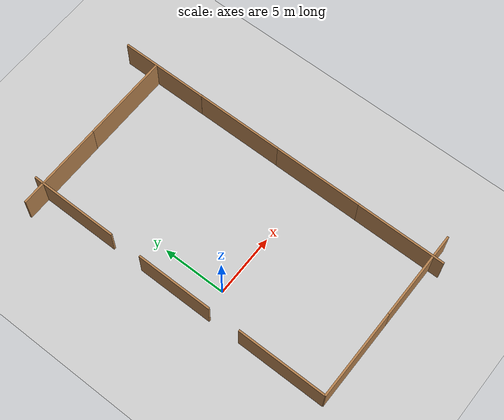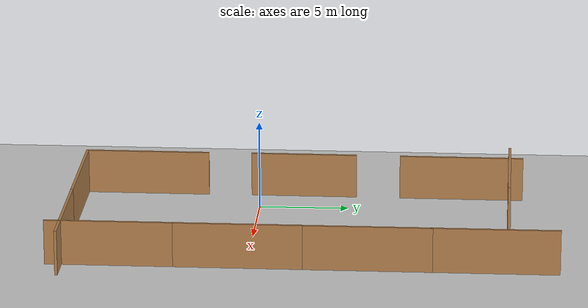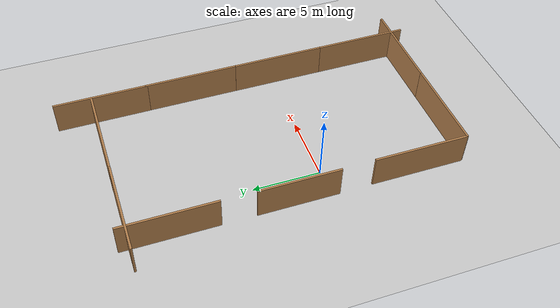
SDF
<sdf version="1.7">
 <world name="default">
  <physics name="default_physics" default="0" type="ode">
   <ode>
    <solver>
     <type>quick</type>
     <iters>10</iters>
     <sor>1.3</sor>
     <use_dynamic_moi_rescaling>0</use_dynamic_moi_rescaling>
    </solver>
    <constraints>
     <cfm>0</cfm>
     <erp>0.2</erp>
     <contact_max_correcting_vel>1000</contact_max_correcting_vel>
     <contact_surface_layer>0.001</contact_surface_layer>
    </constraints>
   </ode>
   <max_step_size>0.004</max_step_size>
   <real_time_factor>1</real_time_factor>
   <real_time_update_rate>250</real_time_update_rate>
  </physics>
  <scene><shadows>0</shadows><ambient>0.4 0.4 0.4 1</ambient><background>0.7 0.7 0.7 1</background></scene>
  <light name="sun" type="directional">
   <pose>0 0 1000 0.4 0.2 0</pose>
   <diffuse>1 1 1 1</diffuse>
   <specular>0.6 0.6 0.6 1</specular>
   <direction>0.1 0.1 -0.9</direction>
   <attenuation>
    <range>20</range>
    <constant>0.5</constant>
    <linear>0.01</linear>
    <quadratic>0.001</quadratic>
   </attenuation>
   <spot><inner_angle>0</inner_angle><outer_angle>0</outer_angle><falloff>0</falloff></spot>
  </light>
  <model name="ground_plane">
   <static>1</static>
   <link name="link">
    <collision name="collision">
     <geometry><plane><normal>0 0 1</normal><size>100 100</size></plane></geometry>
     <surface><friction><ode><mu>100</mu><mu2>50</mu2></ode></friction></surface>
    </collision>
    <visual name="visual">
     <cast_shadows>0</cast_shadows>
     <geometry><plane><normal>0 0 1</normal><size>100 100</size></plane></geometry>
     <material>
      <script><uri>file://media/materials/scripts/gazebo.material</uri><name>Gazebo/Grey</name></script>
     </material>
    </visual>
   </link>
  </model>
  <gravity>0 0 -9.8066</gravity>
  <magnetic_field>6e-06 2.3e-05 -4.2e-05</magnetic_field>
  <atmosphere type="adiabatic"/>
  <spherical_coordinates>
   <surface_model>EARTH_WGS84</surface_model>
   <latitude_deg>0</latitude_deg>
   <longitude_deg>0</longitude_deg>
   <elevation>0</elevation>
   <heading_deg>0</heading_deg>
  </spherical_coordinates>
  <model name="wall_simple_wood_tex">
   <pose>10.5664 -0.448754 0 0 0 -1.57</pose>
   <link name="Wall_7">
    <collision name="Wall_7_Collision">
     <geometry><box><size>7 0.15 2.5</size></box></geometry>
     <pose>0 0 1.25 0 -0 0</pose>
    </collision>
    <visual name="Wall_7_Visual">
     <pose>0 0 1.25 0 -0 0</pose>
     <geometry><box><size>7 0.15 2.5</size></box></geometry>
     <material>
      <script><uri>file://media/materials/scripts/gazebo.material</uri><name>Gazebo/Wood</name></script>
      <ambient>1 1 1 1</ambient>
     </material>
     <meta><layer>0</layer></meta>
    </visual>
    <pose>0 -0.485062 0 0 -0 0</pose>
   </link>
   <static>1</static>
  </model>
  <model name="wall_simple_wood_tex_clone">
   <pose>10.5658 6.55323 0 0 0 -1.57</pose>
   <link name="Wall_7">
    <collision name="Wall_7_Collision">
     <geometry><box><size>7 0.15 2.5</size></box></geometry>
     <pose>0 0 1.25 0 -0 0</pose>
    </collision>
    <visual name="Wall_7_Visual">
     <pose>0 0 1.25 0 -0 0</pose>
     <geometry><box><size>7 0.15 2.5</size></box></geometry>
     <material>
      <script><uri>file://media/materials/scripts/gazebo.material</uri><name>Gazebo/Wood</name></script>
      <ambient>1 1 1 1</ambient>
     </material>
     <meta><layer>0</layer></meta>
    </visual>
    <pose>0 -0.485062 0 0 -0 0</pose>
   </link>
   <static>1</static>
  </model>
  <model name="wall_simple_wood_tex_clone_clone">
   <pose>10.5549 13.3964 0 0 0 -1.57</pose>
   <link name="Wall_7">
    <collision name="Wall_7_Collision">
     <geometry><box><size>7 0.15 2.5</size></box></geometry>
     <pose>0 0 1.25 0 -0 0</pose>
    </collision>
    <visual name="Wall_7_Visual">
     <pose>0 0 1.25 0 -0 0</pose>
     <geometry><box><size>7 0.15 2.5</size></box></geometry>
     <material>
      <script><uri>file://media/materials/scripts/gazebo.material</uri><name>Gazebo/Wood</name></script>
      <ambient>1 1 1 1</ambient>
     </material>
     <meta><layer>0</layer></meta>
    </visual>
    <pose>0 -0.485062 0 0 -0 0</pose>
   </link>
   <static>1</static>
  </model>
  <model name="wall_simple_wood_tex_clone_clone_clone">
   <pose>6.53835 14.5879 0 0 -0 0</pose>
   <link name="Wall_7">
    <collision name="Wall_7_Collision">
     <geometry><box><size>7 0.15 2.5</size></box></geometry>
     <pose>0 0 1.25 0 -0 0</pose>
    </collision>
    <visual name="Wall_7_Visual">
     <pose>0 0 1.25 0 -0 0</pose>
     <geometry><box><size>7 0.15 2.5</size></box></geometry>
     <material>
      <script><uri>file://media/materials/scripts/gazebo.material</uri><name>Gazebo/Wood</name></script>
      <ambient>1 1 1 1</ambient>
     </material>
     <meta><layer>0</layer></meta>
    </visual>
    <pose>0 -0.485062 0 0 -0 0</pose>
   </link>
   <static>1</static>
  </model>
  <model name="wall_simple_wood_tex_clone_clone_clone_clone">
   <pose>-0.451825 14.5815 0 0 -0 0</pose>
   <link name="Wall_7">
    <collision name="Wall_7_Collision">
     <geometry><box><size>7 0.15 2.5</size></box></geometry>
     <pose>0 0 1.25 0 -0 0</pose>
    </collision>
    <visual name="Wall_7_Visual">
     <pose>0 0 1.25 0 -0 0</pose>
     <geometry><box><size>7 0.15 2.5</size></box></geometry>
     <material>
      <script><uri>file://media/materials/scripts/gazebo.material</uri><name>Gazebo/Wood</name></script>
      <ambient>1 1 1 1</ambient>
     </material>
     <meta><layer>0</layer></meta>
    </visual>
    <pose>0 -0.485062 0 0 -0 0</pose>
   </link>
   <static>1</static>
  </model>
  <model name="wall_simple_wood_tex_clone_clone_clone_clone_clone">
   <pose>1.37118 -9.56146 0 0 -0 0</pose>
   <link name="Wall_7">
    <collision name="Wall_7_Collision">
     <geometry><box><size>7 0.15 2.5</size></box></geometry>
     <pose>0 0 1.25 0 -0 0</pose>
    </collision>
    <visual name="Wall_7_Visual">
     <pose>0 0 1.25 0 -0 0</pose>
     <geometry><box><size>7 0.15 2.5</size></box></geometry>
     <material>
      <script><uri>file://media/materials/scripts/gazebo.material</uri><name>Gazebo/Wood</name></script>
      <ambient>1 1 1 1</ambient>
     </material>
     <meta><layer>0</layer></meta>
    </visual>
    <pose>0 -0.485062 0 0 -0 0</pose>
   </link>
   <static>1</static>
  </model>
  <model name="wall_simple_wood_tex_clone_clone_clone_clone_clone_0">
   <pose>8.36767 -9.55977 0 0 -0 0</pose>
   <link name="Wall_7">
    <collision name="Wall_7_Collision">
     <geometry><box><size>7 0.15 2.5</size></box></geometry>
     <pose>0 0 1.25 0 -0 0</pose>
    </collision>
    <visual name="Wall_7_Visual">
     <pose>0 0 1.25 0 -0 0</pose>
     <geometry><box><size>7 0.15 2.5</size></box></geometry>
     <material>
      <script><uri>file://media/materials/scripts/gazebo.material</uri><name>Gazebo/Wood</name></script>
      <ambient>1 1 1 1</ambient>
     </material>
     <meta><layer>0</layer></meta>
    </visual>
    <pose>0 -0.485062 0 0 -0 0</pose>
   </link>
   <static>1</static>
  </model>
  <model name="wall_simple_wood_tex_clone_0">
   <pose>10.5661 -7.40818 0 0 0 -1.57</pose>
   <link name="Wall_7">
    <collision name="Wall_7_Collision">
     <geometry><box><size>7 0.15 2.5</size></box></geometry>
     <pose>0 0 1.25 0 -0 0</pose>
    </collision>
    <visual name="Wall_7_Visual">
     <pose>0 0 1.25 0 -0 0</pose>
     <geometry><box><size>7 0.15 2.5</size></box></geometry>
     <material>
      <script><uri>file://media/materials/scripts/gazebo.material</uri><name>Gazebo/Wood</name></script>
      <ambient>1 1 1 1</ambient>
     </material>
     <meta><layer>0</layer></meta>
    </visual>
    <pose>0 -0.485062 0 0 -0 0</pose>
   </link>
   <static>1</static>
  </model>
  <model name="wall_simple_wood_tex_clone_clone_clone_clone_clone_1">
   <pose>-2.58524 11.3575 0 0 -0 1.57</pose>
   <link name="Wall_7">
    <collision name="Wall_7_Collision">
     <geometry><box><size>7 0.15 2.5</size></box></geometry>
     <pose>0 0 1.25 0 -0 0</pose>
    </collision>
    <visual name="Wall_7_Visual">
     <pose>0 0 1.25 0 -0 0</pose>
     <geometry><box><size>7 0.15 2.5</size></box></geometry>
     <material>
      <script><uri>file://media/materials/scripts/gazebo.material</uri><name>Gazebo/Wood</name></script>
      <ambient>1 1 1 1</ambient>
     </material>
     <meta><layer>0</layer></meta>
    </visual>
    <pose>0 -0.485062 0 0 -0 0</pose>
   </link>
   <static>1</static>
  </model>
  <model name="wall_simple_wood_tex_clone_clone_clone_clone_clone_1_clone_0">
   <pose>-2.56835 -6.55673 0 0 -0 1.57</pose>
   <link name="Wall_7">
    <collision name="Wall_7_Collision">
     <geometry><box><size>7 0.15 2.5</size></box></geometry>
     <pose>0 0 1.25 0 -0 0</pose>
    </collision>
    <visual name="Wall_7_Visual">
     <pose>0 0 1.25 0 -0 0</pose>
     <geometry><box><size>7 0.15 2.5</size></box></geometry>
     <material>
      <script><uri>file://media/materials/scripts/gazebo.material</uri><name>Gazebo/Wood</name></script>
      <ambient>1 1 1 1</ambient>
     </material>
     <meta><layer>0</layer></meta>
    </visual>
    <pose>0 -0.485062 0 0 -0 0</pose>
   </link>
   <static>1</static>
  </model>
  <model name="small_wall">
   <pose>-3.6729 2.3865 0 0 -0 3.14</pose>
   <link name="Wall_14">
    <collision name="Wall_14_Collision">
     <geometry><box><size>6 0.15 2.5</size></box></geometry>
     <pose>0 0 1.25 0 -0 0</pose>
    </collision>
    <visual name="Wall_14_Visual">
     <pose>0 0 1.25 0 -0 0</pose>
     <geometry><box><size>6 0.15 2.5</size></box></geometry>
     <material>
      <script><uri>file://media/materials/scripts/gazebo.material</uri><name>Gazebo/Wood</name></script>
      <ambient>1 1 1 1</ambient>
     </material>
     <meta><layer>0</layer></meta>
    </visual>
    <pose>-1.55302 -0 0 0 -0 1.5708</pose>
   </link>
   <static>1</static>
  </model>
 </world>
</sdf>
